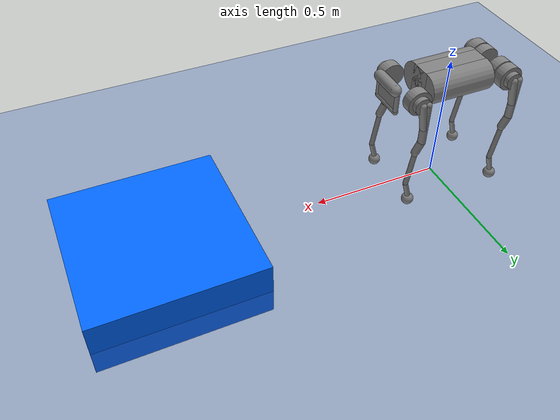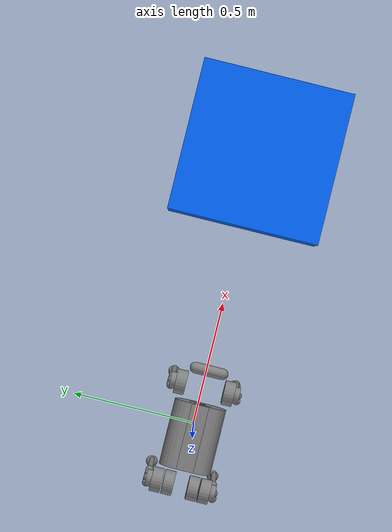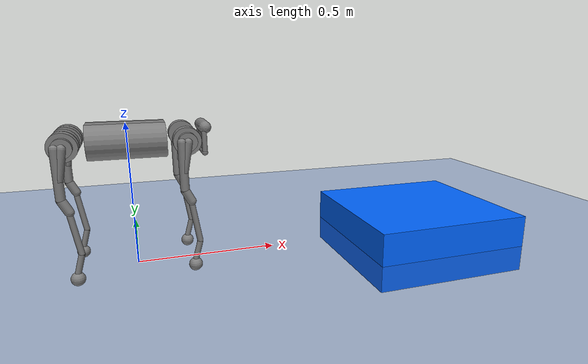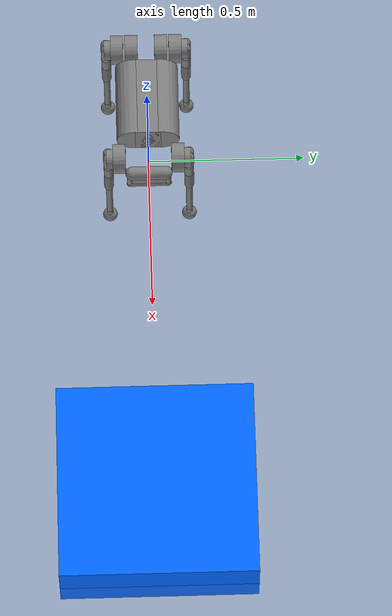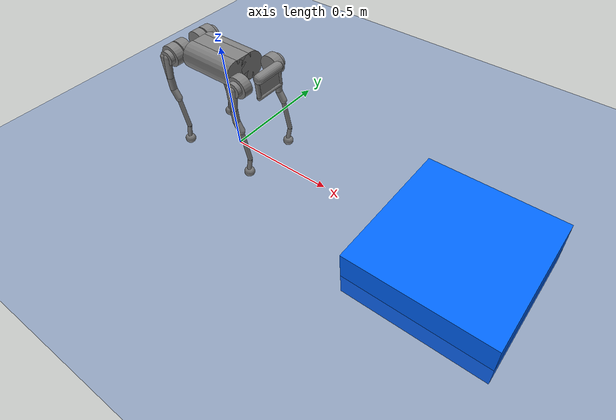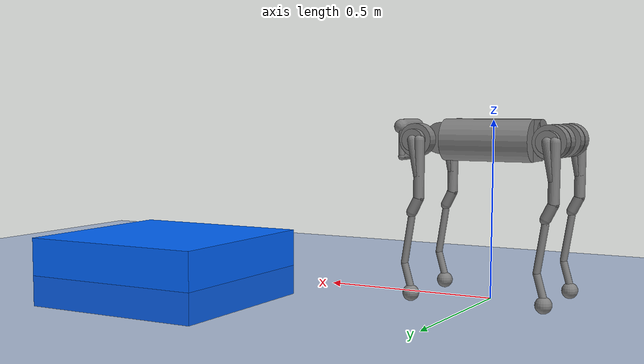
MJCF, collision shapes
<mujoco model="Quadruped Go1">
  <include file="../common.xml"/>

  <size memory="1M"/>

  <custom>
    <!-- estimator -->
    <numeric name="estimator" data="1" />
  </custom>

  <visual>
    <headlight diffuse="0.6 0.6 0.6"  ambient="0.3 0.3 0.3" specular="0 0 0"/>
    <global azimuth="-90" offheight="1024" offwidth="1024"/>
  </visual>

  <statistic extent="1" center="0 0 .3"/>

  <worldbody>
    <light pos="0 0 1.5" dir="0 0 -1" diffuse="0.5 0.5 0.5" specular="0.3 0.3 0.3"
      directional="true" castshadow="false"/>
    <geom name="floor" size="0 0 0.1" pos="0 0 -0.01" type="plane" material="blue_grid"/>
    <body name="box" mocap="true" pos="1.13 0 0">
      <geom name="box" class="prop" size="0.31 0.31 0.112"/>
    </body>
  </worldbody>

  <default>
    <default class="torque">
      <general gainprm="60" ctrllimited="true" ctrlrange="-1 1"/>
    </default>
    <default class="task">
      <site rgba="1 0 0 1" size=".02" group="5"/>
      <default class="flight">
        <site rgba="1 .3 .3 1" size="0.019" group="5"/>
      </default>
      <default class="stance">
        <site rgba=".3 1 .3 1" size=".018" group="4"/>
      </default>
    </default>
    <default class="prop">
      <geom type="box" rgba="0 0.4 1 1"/>
    </default>
  </default>

  <include file="go1_mppi_pyr.xml" />

  <actuator>
    <general class="abduction" name="FR_hip" joint="FR_hip_joint"/>
    <general class="hip" name="FR_thigh" joint="FR_thigh_joint"/>
    <general class="knee" name="FR_calf" joint="FR_calf_joint"/>
    <general class="abduction" name="FL_hip" joint="FL_hip_joint"/>
    <general class="hip" name="FL_thigh" joint="FL_thigh_joint"/>
    <general class="knee" name="FL_calf" joint="FL_calf_joint"/>
    <general class="abduction" name="RR_hip" joint="RR_hip_joint"/>
    <general class="hip" name="RR_thigh" joint="RR_thigh_joint"/>
    <general class="knee" name="RR_calf" joint="RR_calf_joint"/>
    <general class="abduction" name="RL_hip" joint="RL_hip_joint"/>
    <general class="hip" name="RL_thigh" joint="RL_thigh_joint"/>
    <general class="knee" name="RL_calf" joint="RL_calf_joint"/>
  </actuator>

  <sensor>

    <framepos name="torso_pos" objtype="xbody" objname="trunk" />
    <framequat name="torso_quat" objtype="xbody" objname="trunk" />

    <jointpos name="pos_FR_hip_joint" joint="FR_hip_joint" />
    <jointpos name="pos_FR_thigh_joint" joint="FR_thigh_joint" />
    <jointpos name="pos_FR_calf_joint" joint="FR_calf_joint" />
    <jointpos name="pos_FL_hip_joint" joint="FL_hip_joint" />
    <jointpos name="pos_FL_thigh_joint" joint="FL_thigh_joint" />
    <jointpos name="pos_FL_calf_joint" joint="FL_calf_joint" />
    <jointpos name="pos_RR_hip_joint" joint="RR_hip_joint" />
    <jointpos name="pos_RR_thigh_joint" joint="RR_thigh_joint" />
    <jointpos name="pos_RR_calf_joint" joint="RR_calf_joint" />
    <jointpos name="pos_RL_hip_joint" joint="RL_hip_joint" />
    <jointpos name="pos_RL_thigh_joint" joint="RL_thigh_joint" />
    <jointpos name="pos_RL_calf_joint" joint="RL_calf_joint" />

  </sensor>

  <keyframe>
    <key name="home"
         qpos="0 0 0.26
               1 0 0 0
               0 0.9 -1.8
               0 0.9 -1.8
               0 0.9 -1.8
               0 0.9 -1.8"
      ctrl="0 0.9 -1.8
            0 0.9 -1.8
            0 0.9 -1.8
            0 0.9 -1.8"/>
    <key name="sit"
      qpos="0 0 0.08
            1 0 0 0
            0.073 1.34 -2.83
            0.073 1.34 -2.83
            0.073 1.34 -2.83
            0.073 1.34 -2.83"
      ctrl="0.073 1.34 -2.83
            0.073 1.34 -2.83
            0.073 1.34 -2.83
            0.073 1.34 -2.83"/>
    <key name="tune"
      qpos="0 0 0.08
            1 0 0 0
            -0.1 1.34 -2.83
            0.1 1.34 -2.83
            -0.1 1.34 -2.83
            0.1 1.34 -2.83"
      ctrl="-0.1 1.34 -2.83
            0.1 1.34 -2.83
            -0.1 1.34 -2.83
            0.1 1.34 -2.83"/>
  </keyframe>
</mujoco>

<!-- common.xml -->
<mujoco>

  <visual>
    <headlight ambient=".4 .4 .4" diffuse=".8 .8 .8" specular="0.1 0.1 0.1"/>
    <map znear=".01"/>
    <quality shadowsize="2048"/>
  </visual>

  <asset>
    <texture name="blue_grid" type="2d" builtin="checker" rgb1=".02 .14 .44" rgb2=".27 .55 1" width="300" height="300" mark="edge" markrgb="1 1 1"/>
    <material name="blue_grid" texture="blue_grid" texrepeat="1 1" texuniform="true" reflectance=".2"/>

    <texture name="grey_grid" type="2d" builtin="checker" rgb1=".26 .26 .26" rgb2=".6 .6 .6" width="300" height="300" mark="edge" markrgb="1 1 1"/>
    <material name="grey_grid" texture="grey_grid" texrepeat="1 1" texuniform="true" reflectance=".2"/>
    <texture name="skybox" type="skybox" builtin="gradient" rgb1=".66 .79 1" rgb2=".9 .91 .93" width="800" height="800"/>

    <material name="self" rgba=".7 .5 .3 1"/>
    <material name="self_default" rgba=".7 .5 .3 1"/>
    <material name="self_highlight" rgba="0 .5 .3 1"/>
    <material name="effector" rgba=".7 .4 .2 1"/>
    <material name="effector_default" rgba=".7 .4 .2 1"/>
    <material name="effector_highlight" rgba="0 .5 .3 1"/>
    <material name="decoration" rgba=".2 .6 .3 1"/>
    <material name="eye" rgba="0 .2 1 1"/>
    <material name="target" rgba=".6 .3 .3 1"/>
    <material name="target_default" rgba=".6 .3 .3 1"/>
    <material name="target_highlight" rgba=".6 .3 .3 .4"/>
    <material name="site" rgba=".5 .5 .5 .3"/>
  </asset>
</mujoco>

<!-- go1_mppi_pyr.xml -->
<mujoco model="go1">
  <compiler angle="radian" meshdir="assets" autolimits="true"/>

  <option cone="pyramidal" impratio="100"/>

  <default>
    <default class="go1">
      <geom friction="0.6" margin="0.001" condim="1"/>
      <joint axis="0 1 0" damping="2" armature="0.01" frictionloss="0.2"/>
      <general forcerange="-23.7 23.7" biastype="affine" gainprm="60 0 0 0 0 0 0 0 0 0" biasprm="0 -60 -3 0 0 0 0 0 0 0"/>
      <default class="abduction">
        <joint axis="1 0 0" damping="1" range="-0.863 0.863"/>
        <general ctrlrange="-0.863 0.863"/>
      </default>
      <default class="hip">
        <joint range="-0.686 4.501"/>
        <general ctrlrange="-0.686 4.501"/>
      </default>
      <default class="knee">
        <joint range="-2.818 -0.888"/>
        <general ctrlrange="-2.818 -0.888" forcerange="-35.55 35.55"/>
      </default>
      <default class="visual">
        <geom type="mesh" contype="0" conaffinity="0" group="2" material="dark"/>
      </default>
      <default class="collision">
        <geom group="3" type="capsule"/>
        <default class="hip_left1">
          <geom size="0.046 0.02" pos="0 0.045 0" quat="1 1 0 0" type="cylinder"/>
        </default>
        <default class="hip_left2">
          <geom size="0.031 0.02" pos="0 0.065 0" quat="1 1 0 0" type="cylinder"/>
        </default>
        <default class="hip_left3">
          <geom size="0.046 0.02" quat="1 1 0 0" type="cylinder"/>
        </default>
        <default class="hip_right1">
          <geom size="0.046 0.02" pos="0 -0.045 0" quat="1 1 0 0" type="cylinder"/>
        </default>
        <default class="hip_right2">
          <geom size="0.031 0.02" pos="0 -0.065 0" quat="1 1 0 0" type="cylinder"/>
        </default>
        <default class="hip_right3">
          <geom size="0.046 0.02" quat="1 1 0 0" type="cylinder"/>
        </default>
        <default class="thigh1">
          <geom size="0.015" fromto="-0.02 0 0 -0.02 0 -0.16"/>
        </default>
        <default class="thigh2">
          <geom size="0.015" fromto="0 0 0 -0.02 0 -0.1"/>
        </default>
        <default class="thigh3">
          <geom size="0.015" fromto="-0.02 0 -0.16 0 0 -0.2"/>
        </default>
        <default class="calf1">
          <geom size="0.01" fromto="0 0 0 0.02 0 -0.13"/>
        </default>
        <default class="calf2">
          <geom size="0.01" fromto="0.02 0 -0.13 0 0 -0.2"/>
        </default>
        <default class="foot">
          <geom type="sphere" size="0.023" pos="0 0 -0.213" priority="1" solimp="0.015 1 0.031" condim="6"
            friction="0.8 0.02 0.01"/>
        </default>
      </default>
    </default>
  </default>

  <asset>
    <material name="dark" rgba="0.1 0.1 0.1 1"/>
    <mesh class="go1" file="trunk.stl"/>
    <mesh class="go1" file="hip.stl"/>
    <mesh class="go1" file="thigh_mirror.stl"/>
    <mesh class="go1" file="calf.stl"/>
    <mesh class="go1" file="thigh.stl"/>
  </asset>

  <worldbody>
    <light name="spotlight" mode="targetbodycom" target="trunk" pos="0 -1 2"/>
    <body name="trunk" pos="0 0 0.445" childclass="go1">
      <camera name="tracking" mode="trackcom" pos="0 -1 0.8" xyaxes="1 0 0 0 1 1"/>
      <site name="head" pos="0.3 0 0" rgba="1 0 0 1" size="0.02" group="5"/>
      <inertial pos="0.0223 0.002 -0.0005" quat="-0.00342088 0.705204 0.000106698 0.708996" mass="5.204"
        diaginertia="0.0716565 0.0630105 0.0168101"/>
      <freejoint/>
      <geom class="visual" mesh="trunk"/>
      <geom class="collision" size="0.125 0.04 0.057" type="box"/>
      <geom class="collision" quat="1 0 1 0" pos="0 -0.04 0" size="0.058 0.125" type="cylinder"/>
      <geom class="collision" quat="1 0 1 0" pos="0 +0.04 0" size="0.058 0.125" type="cylinder"/>
      <geom class="collision" pos="0.25 0 0" size="0.005 0.06 0.05" type="box"/>
      <geom class="collision" pos="0.25 0.06 -0.01" size="0.009 0.035"/>
      <geom class="collision" pos="0.25 -0.06 -0.01" size="0.009 0.035"/>
      <geom class="collision" pos="0.25 0 -0.05" size="0.01 0.06" quat="1 1 0 0"/>
      <geom class="collision" pos="0.255 0 0.0355" size="0.021 0.052" quat="1 1 0 0"/>
      <site name="imu" pos="0 0 0"/>
      <body name="FR_hip" pos="0.1881 -0.04675 0">
        <inertial pos="-0.0049166 0.00762615 -8.865e-05" quat="0.507341 0.514169 0.495027 0.482891" mass="0.68"
          diaginertia="0.000734064 0.000468438 0.000398719"/>
        <joint class="abduction" name="FR_hip_joint"/>
        <geom class="visual" mesh="hip" quat="1 0 0 0"/>
        <geom class="hip_right1"/>
        <geom class="hip_right2"/>
        <body name="FR_thigh" pos="0 -0.08 0">
          <inertial pos="-0.00304722 0.019315 -0.0305004" quat="0.65243 -0.0272313 0.0775126 0.753383" mass="1.009"
            diaginertia="0.00478717 0.00460903 0.000709268"/>
          <joint class="hip" name="FR_thigh_joint"/>
          <geom class="visual" mesh="thigh_mirror"/>
          <geom class="thigh1"/>
          <geom class="thigh2"/>
          <geom class="thigh3"/>
          <body name="FR_calf" pos="0 0 -0.213">
            <inertial pos="0.00429862 0.000976676 -0.146197" quat="0.691246 0.00357467 0.00511118 0.722592"
              mass="0.195862" diaginertia="0.00149767 0.00148468 3.58427e-05"/>
            <joint class="knee" name="FR_calf_joint"/>
            <geom class="visual" mesh="calf"/>
            <geom class="calf1"/>
            <geom class="calf2"/>
            <geom name="FR" class="foot"/>
            <site name="FR" pos="0 0 -0.213" type="sphere" size="0.023" group="5"/>
          </body>
        </body>
      </body>
      <body name="FL_hip" pos="0.1881 0.04675 0">
        <inertial pos="-0.0049166 -0.00762615 -8.865e-05" quat="0.482891 0.495027 0.514169 0.507341" mass="0.68"
          diaginertia="0.000734064 0.000468438 0.000398719"/>
        <joint class="abduction" name="FL_hip_joint"/>
        <geom class="visual" mesh="hip"/>
        <geom class="hip_left1"/>
        <geom class="hip_left2"/>
        <body name="FL_thigh" pos="0 0.08 0">
          <inertial pos="-0.00304722 -0.019315 -0.0305004" quat="0.753383 0.0775126 -0.0272313 0.65243" mass="1.009"
            diaginertia="0.00478717 0.00460903 0.000709268"/>
          <joint class="hip" name="FL_thigh_joint"/>
          <geom class="visual" mesh="thigh"/>
          <geom class="thigh1"/>
          <geom class="thigh2"/>
          <geom class="thigh3"/>
          <body name="FL_calf" pos="0 0 -0.213">
            <inertial pos="0.00429862 0.000976676 -0.146197" quat="0.691246 0.00357467 0.00511118 0.722592"
              mass="0.195862" diaginertia="0.00149767 0.00148468 3.58427e-05"/>
            <joint class="knee" name="FL_calf_joint"/>
            <geom class="visual" mesh="calf"/>
            <geom class="calf1"/>
            <geom class="calf2"/>
            <geom name="FL" class="foot"/>
            <site name="FL" pos="0 0 -0.213" type="sphere" size="0.023" group="5"/>
          </body>
        </body>
      </body>
      <body name="RR_hip" pos="-0.1881 -0.04675 0">
        <inertial pos="0.0049166 0.00762615 -8.865e-05" quat="0.495027 0.482891 0.507341 0.514169" mass="0.68"
          diaginertia="0.000734064 0.000468438 0.000398719"/>
        <joint class="abduction" name="RR_hip_joint"/>
        <geom class="visual" quat="0 0 0 -1" mesh="hip"/>
        <geom class="hip_right1"/>
        <geom class="hip_right2"/>
        <geom class="hip_right3"/>
        <body name="RR_thigh" pos="0 -0.08 0">
          <inertial pos="-0.00304722 0.019315 -0.0305004" quat="0.65243 -0.0272313 0.0775126 0.753383" mass="1.009"
            diaginertia="0.00478717 0.00460903 0.000709268"/>
          <joint class="hip" name="RR_thigh_joint"/>
          <geom class="visual" mesh="thigh_mirror"/>
          <geom class="thigh1"/>
          <geom class="thigh2"/>
          <geom class="thigh3"/>
          <body name="RR_calf" pos="0 0 -0.213">
            <inertial pos="0.00429862 0.000976676 -0.146197" quat="0.691246 0.00357467 0.00511118 0.722592"
              mass="0.195862" diaginertia="0.00149767 0.00148468 3.58427e-05"/>
            <joint class="knee" name="RR_calf_joint"/>
            <geom class="visual" mesh="calf"/>
            <geom class="calf1"/>
            <geom class="calf2"/>
            <geom name="RR" class="foot"/>
            <site name="RR" pos="0 0 -0.213" type="sphere" size="0.023" group="5"/>
          </body>
        </body>
      </body>
      <body name="RL_hip" pos="-0.1881 0.04675 0">
        <inertial pos="0.0049166 -0.00762615 -8.865e-05" quat="0.514169 0.507341 0.482891 0.495027" mass="0.68"
          diaginertia="0.000734064 0.000468438 0.000398719"/>
        <joint class="abduction" name="RL_hip_joint"/>
        <geom class="visual" quat="0 0 1 0" mesh="hip"/>
        <geom class="hip_left1"/>
        <geom class="hip_left2"/>
        <geom class="hip_left3"/>
        <body name="RL_thigh" pos="0 0.08 0">
          <inertial pos="-0.00304722 -0.019315 -0.0305004" quat="0.753383 0.0775126 -0.0272313 0.65243" mass="1.009"
            diaginertia="0.00478717 0.00460903 0.000709268"/>
          <joint class="hip" name="RL_thigh_joint"/>
          <geom class="visual" mesh="thigh"/>
          <geom class="thigh1"/>
          <geom class="thigh2"/>
          <geom class="thigh3"/>
          <body name="RL_calf" pos="0 0 -0.213">
            <inertial pos="0.00429862 0.000976676 -0.146197" quat="0.691246 0.00357467 0.00511118 0.722592"
              mass="0.195862" diaginertia="0.00149767 0.00148468 3.58427e-05"/>
            <joint class="knee" name="RL_calf_joint"/>
            <geom class="visual" mesh="calf"/>
            <geom class="calf1"/>
            <geom class="calf2"/>
            <geom name="RL" class="foot"/>
            <site name="RL" pos="0 0 -0.213" type="sphere" size="0.023" group="5"/>
          </body>
        </body>
      </body>
    </body>
  </worldbody>
</mujoco>
